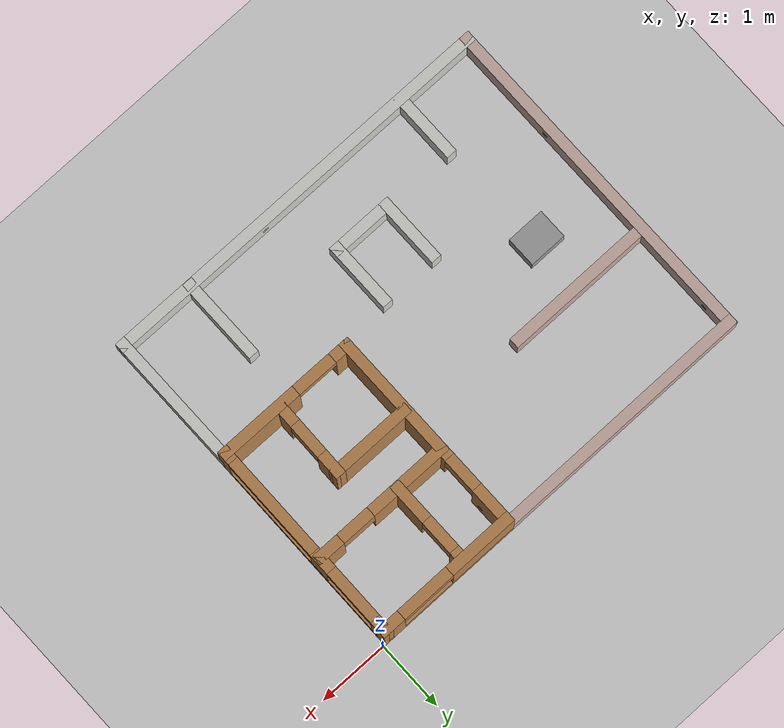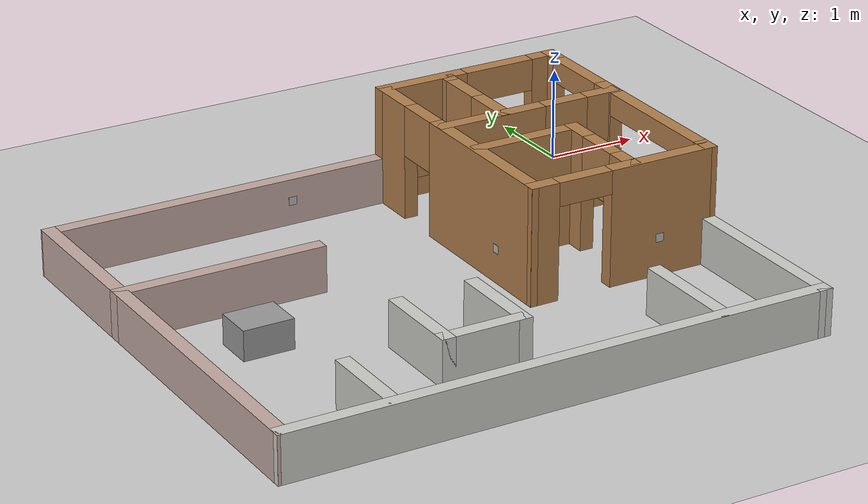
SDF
<sdf version="1.6">
 <world name="default">
  <light name="sun" type="directional">
   <pose>0 0 10 0 -0 0</pose>
   <diffuse>0.8 0.8 0.8 1</diffuse>
   <specular>0.2 0.2 0.2 1</specular>
   <attenuation>
    <range>1000</range>
    <constant>0.9</constant>
    <linear>0.01</linear>
    <quadratic>0.001</quadratic>
   </attenuation>
   <direction>-0.5 0.1 -0.9</direction>
  </light>
  <model name="ground_plane">
   <static>1</static>
   <link name="link">
    <collision name="collision">
     <geometry><plane><normal>0 0 1</normal><size>100 100</size></plane></geometry>
     <surface><friction><ode><mu>100</mu><mu2>50</mu2></ode></friction></surface>
    </collision>
    <visual name="visual">
     <cast_shadows>0</cast_shadows>
     <geometry><plane><normal>0 0 1</normal><size>100 100</size></plane></geometry>
     <material>
      <script><uri>file://media/materials/scripts/gazebo.material</uri><name>Gazebo/Grey</name></script>
     </material>
    </visual>
   </link>
  </model>
  <gravity>0 0 -9.8</gravity>
  <magnetic_field>6e-06 2.3e-05 -4.2e-05</magnetic_field>
  <atmosphere type="adiabatic"/>
  <physics name="default_physics" default="0" type="ode">
   <max_step_size>0.001</max_step_size>
   <real_time_factor>1</real_time_factor>
   <real_time_update_rate>1000</real_time_update_rate>
   <ode><solver><friction_model>cone_model</friction_model></solver></ode>
  </physics>
  <scene><ambient>0.4 0.4 0.4 1</ambient><background>0.7 0.7 0.7 1</background><shadows>1</shadows></scene>
  <spherical_coordinates>
   <surface_model>EARTH_WGS84</surface_model>
   <latitude_deg>0</latitude_deg>
   <longitude_deg>0</longitude_deg>
   <elevation>0</elevation>
   <heading_deg>0</heading_deg>
  </spherical_coordinates>
  <model name="Muzeum">
   <pose>-3 -2.5 0 0 -0 0</pose>
   <link name="Wall_0">
    <collision name="Wall_0_Collision">
     <geometry><box><size>5.9351 0.15 0.5</size></box></geometry>
     <pose>0 0 0.25 0 -0 0</pose>
    </collision>
    <visual name="Wall_0_Visual">
     <pose>0 0 0.25 0 -0 0</pose>
     <geometry><box><size>5.9351 0.15 0.5</size></box></geometry>
     <material>
      <script><uri>file://media/materials/scripts/gazebo.material</uri><name>Gazebo/CeilingTiled</name></script>
      <ambient>0.760784 0.662745 0.627451 1</ambient>
     </material>
    </visual>
    <pose>-0.007007 -2.42791 0 0 0 -0.003148</pose>
   </link>
   <link name="Wall_10">
    <collision name="Wall_10_Collision">
     <geometry><box><size>2.25 0.15 0.5</size></box></geometry>
     <pose>0 0 0.25 0 -0 0</pose>
    </collision>
    <visual name="Wall_10_Visual">
     <pose>0 0 0.25 0 -0 0</pose>
     <geometry><box><size>2.25 0.15 0.5</size></box></geometry>
     <material>
      <script><uri>file://media/materials/scripts/gazebo.material</uri><name>Gazebo/Grey</name></script>
      <ambient>0.760784 0.662745 0.627451 1</ambient>
     </material>
    </visual>
    <pose>-1.84954 0.824193 0 0 -0 0</pose>
   </link>
   <link name="Wall_12">
    <collision name="Wall_12_Collision">
     <geometry><box><size>1 0.15 0.5</size></box></geometry>
     <pose>0 0 0.25 0 -0 0</pose>
    </collision>
    <visual name="Wall_12_Visual">
     <pose>0 0 0.25 0 -0 0</pose>
     <geometry><box><size>1 0.15 0.5</size></box></geometry>
     <material>
      <script><uri>file://media/materials/scripts/gazebo.material</uri><name>Gazebo/CeilingTiled</name></script>
      <ambient>0.760784 0.662745 0.627451 1</ambient>
     </material>
    </visual>
    <pose>-0.729544 -1.11281 0 0 0 -1.5708</pose>
   </link>
   <link name="Wall_13">
    <collision name="Wall_13_Collision">
     <geometry><box><size>0.979959 0.15 0.5</size></box></geometry>
     <pose>0 0 0.25 0 -0 0</pose>
    </collision>
    <visual name="Wall_13_Visual">
     <pose>0 0 0.25 0 -0 0</pose>
     <geometry><box><size>0.979959 0.15 0.5</size></box></geometry>
     <material>
      <script><uri>file://media/materials/scripts/gazebo.material</uri><name>Gazebo/CeilingTiled</name></script>
      <ambient>0.760784 0.662745 0.627451 1</ambient>
     </material>
    </visual>
    <pose>-0.314544 -1.53781 0 0 -0 0</pose>
   </link>
   <link name="Wall_14">
    <collision name="Wall_14_Collision">
     <geometry><box><size>1.00821 0.15 0.5</size></box></geometry>
     <pose>0 0 0.25 0 -0 0</pose>
    </collision>
    <visual name="Wall_14_Visual">
     <pose>0 0 0.25 0 -0 0</pose>
     <geometry><box><size>1.00821 0.15 0.5</size></box></geometry>
     <material>
      <script><uri>file://media/materials/scripts/gazebo.material</uri><name>Gazebo/CeilingTiled</name></script>
      <ambient>0.760784 0.662745 0.627451 1</ambient>
     </material>
    </visual>
    <pose>0.100456 -1.10881 0 0 -0 1.5708</pose>
   </link>
   <link name="Wall_16">
    <collision name="Wall_16_Collision">
     <geometry><box><size>1.25027 0.15 1.25</size></box></geometry>
     <pose>0 0 0.625 0 -0 0</pose>
    </collision>
    <visual name="Wall_16_Visual">
     <pose>0 0 0.625 0 -0 0</pose>
     <geometry><box><size>1.25027 0.15 1.25</size></box></geometry>
     <material>
      <script><uri>file://media/materials/scripts/gazebo.material</uri><name>Gazebo/Wood</name></script>
      <ambient>1 1 1 1</ambient>
     </material>
    </visual>
    <pose>1.46896 0.594193 0 0 -0 0</pose>
   </link>
   <link name="Wall_17">
    <pose>2.01146 0.070193 0 0 0 -1.58606</pose>
    <visual name="Wall_17_Visual_0">
     <pose>-0.420759 0 0.625 0 -0 0</pose>
     <geometry><box><size>0.357124 0.15 1.25</size></box></geometry>
     <material>
      <script><uri>file://media/materials/scripts/gazebo.material</uri><name>Gazebo/Wood</name></script>
      <ambient>1 1 1 1</ambient>
     </material>
    </visual>
    <collision name="Wall_17_Collision_0">
     <geometry><box><size>0.357124 0.15 1.25</size></box></geometry>
     <pose>-0.420759 0 0.625 0 -0 0</pose>
    </collision>
    <visual name="Wall_17_Visual_1">
     <pose>0.428562 0 0.625 0 -0 0</pose>
     <geometry><box><size>0.341518 0.15 1.25</size></box></geometry>
     <material>
      <script><uri>file://media/materials/scripts/gazebo.material</uri><name>Gazebo/Wood</name></script>
      <ambient>1 1 1 1</ambient>
     </material>
    </visual>
    <collision name="Wall_17_Collision_1">
     <geometry><box><size>0.341518 0.15 1.25</size></box></geometry>
     <pose>0.428562 0 0.625 0 -0 0</pose>
    </collision>
    <visual name="Wall_17_Visual_2">
     <pose>0.007803 0 0.975 0 -0 0</pose>
     <geometry><box><size>0.5 0.15 0.55</size></box></geometry>
     <material>
      <script><uri>file://media/materials/scripts/gazebo.material</uri><name>Gazebo/Wood</name></script>
      <ambient>1 1 1 1</ambient>
     </material>
    </visual>
    <collision name="Wall_17_Collision_2">
     <geometry><box><size>0.5 0.15 0.55</size></box></geometry>
     <pose>0.007803 0 0.975 0 -0 0</pose>
    </collision>
   </link>
   <link name="Wall_19">
    <pose>1.88387 1.24696 0 0 0 -0.003258</pose>
    <visual name="Wall_19_Visual_0">
     <pose>-0.448853 0 0.625 0 -0 0</pose>
     <geometry><box><size>1.23514 0.15 1.25</size></box></geometry>
     <material>
      <script><uri>file://media/materials/scripts/gazebo.material</uri><name>Gazebo/Wood</name></script>
      <ambient>1 1 1 1</ambient>
     </material>
    </visual>
    <collision name="Wall_19_Collision_0">
     <geometry><box><size>1.23514 0.15 1.25</size></box></geometry>
     <pose>-0.448853 0 0.625 0 -0 0</pose>
    </collision>
    <visual name="Wall_19_Visual_1">
     <pose>0.867571 0 0.625 0 -0 0</pose>
     <geometry><box><size>0.397706 0.15 1.25</size></box></geometry>
     <material>
      <script><uri>file://media/materials/scripts/gazebo.material</uri><name>Gazebo/Wood</name></script>
      <ambient>1 1 1 1</ambient>
     </material>
    </visual>
    <collision name="Wall_19_Collision_1">
     <geometry><box><size>0.397706 0.15 1.25</size></box></geometry>
     <pose>0.867571 0 0.625 0 -0 0</pose>
    </collision>
    <visual name="Wall_19_Visual_2">
     <pose>0.418718 0 0.975 0 -0 0</pose>
     <geometry><box><size>0.5 0.15 0.55</size></box></geometry>
     <material>
      <script><uri>file://media/materials/scripts/gazebo.material</uri><name>Gazebo/Wood</name></script>
      <ambient>1 1 1 1</ambient>
     </material>
    </visual>
    <collision name="Wall_19_Collision_2">
     <geometry><box><size>0.5 0.15 0.55</size></box></geometry>
     <pose>0.418718 0 0.975 0 -0 0</pose>
    </collision>
   </link>
   <link name="Wall_21">
    <pose>1.60746 1.80819 0 0 -0 1.5708</pose>
    <visual name="Wall_21_Visual_0">
     <pose>-0.328111 0 0.625 0 -0 0</pose>
     <geometry><box><size>0.593779 0.15 1.25</size></box></geometry>
     <material>
      <script><uri>file://media/materials/scripts/gazebo.material</uri><name>Gazebo/Wood</name></script>
      <ambient>1 1 1 1</ambient>
     </material>
    </visual>
    <collision name="Wall_21_Collision_0">
     <geometry><box><size>0.593779 0.15 1.25</size></box></geometry>
     <pose>-0.328111 0 0.625 0 -0 0</pose>
    </collision>
    <visual name="Wall_21_Visual_1">
     <pose>0.546889 0 0.625 0 -0 0</pose>
     <geometry><box><size>0.156221 0.15 1.25</size></box></geometry>
     <material>
      <script><uri>file://media/materials/scripts/gazebo.material</uri><name>Gazebo/Wood</name></script>
      <ambient>1 1 1 1</ambient>
     </material>
    </visual>
    <collision name="Wall_21_Collision_1">
     <geometry><box><size>0.156221 0.15 1.25</size></box></geometry>
     <pose>0.546889 0 0.625 0 -0 0</pose>
    </collision>
    <visual name="Wall_21_Visual_2">
     <pose>0.218779 0 0.975 0 -0 0</pose>
     <geometry><box><size>0.5 0.15 0.55</size></box></geometry>
     <material>
      <script><uri>file://media/materials/scripts/gazebo.material</uri><name>Gazebo/Wood</name></script>
      <ambient>1 1 1 1</ambient>
     </material>
    </visual>
    <collision name="Wall_21_Collision_2">
     <geometry><box><size>0.5 0.15 0.55</size></box></geometry>
     <pose>0.218779 0 0.975 0 -0 0</pose>
    </collision>
   </link>
   <link name="Wall_23">
    <collision name="Wall_23_Collision">
     <geometry><box><size>1.25 0.15 0.5</size></box></geometry>
     <pose>0 0 0.25 0 -0 0</pose>
    </collision>
    <visual name="Wall_23_Visual">
     <pose>0 0 0.25 0 -0 0</pose>
     <geometry><box><size>1.25 0.15 0.5</size></box></geometry>
     <material>
      <script><uri>file://media/materials/scripts/gazebo.material</uri><name>Gazebo/CeilingTiled</name></script>
      <ambient>0.760784 0.662745 0.627451 1</ambient>
     </material>
    </visual>
    <pose>1.76746 -1.87681 0 0 -0 1.5708</pose>
   </link>
   <link name="Wall_26">
    <collision name="Wall_26_Collision">
     <geometry><box><size>1 0.15 0.5</size></box></geometry>
     <pose>0 0 0.25 0 -0 0</pose>
    </collision>
    <visual name="Wall_26_Visual">
     <pose>0 0 0.25 0 -0 0</pose>
     <geometry><box><size>1 0.15 0.5</size></box></geometry>
     <material>
      <script><uri>file://media/materials/scripts/gazebo.material</uri><name>Gazebo/CeilingTiled</name></script>
      <ambient>0.760784 0.662745 0.627451 1</ambient>
     </material>
    </visual>
    <pose>-1.76654 -1.96681 0 0 -0 1.5708</pose>
   </link>
   <link name="Wall_28">
    <pose>2.89167 0.974494 0 0 -0 1.56552</pose>
    <visual name="Wall_28_Visual_0">
     <pose>-1.43397 0 0.625 0 -0 0</pose>
     <geometry><box><size>0.206833 0.15 1.25</size></box></geometry>
     <material>
      <script><uri>file://media/materials/scripts/gazebo.material</uri><name>Gazebo/Wood</name></script>
      <ambient>1 1 1 1</ambient>
     </material>
    </visual>
    <collision name="Wall_28_Collision_0">
     <geometry><box><size>0.206833 0.15 1.25</size></box></geometry>
     <pose>-1.43397 0 0.625 0 -0 0</pose>
    </collision>
    <visual name="Wall_28_Visual_1">
     <pose>0.103416 0 0.1 0 -0 0</pose>
     <geometry><box><size>2.86795 0.15 0.2</size></box></geometry>
     <material>
      <script><uri>file://media/materials/scripts/gazebo.material</uri><name>Gazebo/Wood</name></script>
      <ambient>1 1 1 1</ambient>
     </material>
    </visual>
    <collision name="Wall_28_Collision_1">
     <geometry><box><size>2.86795 0.15 0.2</size></box></geometry>
     <pose>0.103416 0 0.1 0 -0 0</pose>
    </collision>
    <visual name="Wall_28_Visual_2">
     <pose>0.325307 0 0.725 0 -0 0</pose>
     <geometry><box><size>0.311727 0.15 1.05</size></box></geometry>
     <material>
      <script><uri>file://media/materials/scripts/gazebo.material</uri><name>Gazebo/Wood</name></script>
      <ambient>1 1 1 1</ambient>
     </material>
    </visual>
    <collision name="Wall_28_Collision_2">
     <geometry><box><size>0.311727 0.15 1.05</size></box></geometry>
     <pose>0.325307 0 0.725 0 -0 0</pose>
    </collision>
    <visual name="Wall_28_Visual_3">
     <pose>1.40928 0 0.725 0 -0 0</pose>
     <geometry><box><size>0.256218 0.15 1.05</size></box></geometry>
     <material>
      <script><uri>file://media/materials/scripts/gazebo.material</uri><name>Gazebo/Wood</name></script>
      <ambient>1 1 1 1</ambient>
     </material>
    </visual>
    <collision name="Wall_28_Collision_3">
     <geometry><box><size>0.256218 0.15 1.05</size></box></geometry>
     <pose>1.40928 0 0.725 0 -0 0</pose>
    </collision>
    <visual name="Wall_28_Visual_4">
     <pose>-0.580556 0 1.125 0 -0 0</pose>
     <geometry><box><size>1.5 0.15 0.25</size></box></geometry>
     <material>
      <script><uri>file://media/materials/scripts/gazebo.material</uri><name>Gazebo/Wood</name></script>
      <ambient>1 1 1 1</ambient>
     </material>
    </visual>
    <collision name="Wall_28_Collision_4">
     <geometry><box><size>1.5 0.15 0.25</size></box></geometry>
     <pose>-0.580556 0 1.125 0 -0 0</pose>
    </collision>
    <visual name="Wall_28_Visual_5">
     <pose>0.881171 0 1.125 0 -0 0</pose>
     <geometry><box><size>0.8 0.15 0.25</size></box></geometry>
     <material>
      <script><uri>file://media/materials/scripts/gazebo.material</uri><name>Gazebo/Wood</name></script>
      <ambient>1 1 1 1</ambient>
     </material>
    </visual>
    <collision name="Wall_28_Collision_5">
     <geometry><box><size>0.8 0.15 0.25</size></box></geometry>
     <pose>0.881171 0 1.125 0 -0 0</pose>
    </collision>
   </link>
   <link name="Wall_3">
    <collision name="Wall_3_Collision">
     <geometry><box><size>4.99773 0.15 0.5</size></box></geometry>
     <pose>0 0 0.25 0 -0 0</pose>
    </collision>
    <visual name="Wall_3_Visual">
     <pose>0 0 0.25 0 -0 0</pose>
     <geometry><box><size>4.99773 0.15 0.5</size></box></geometry>
     <material>
      <script><uri>file://media/materials/scripts/gazebo.material</uri><name>Gazebo/Grey</name></script>
      <ambient>0.760784 0.662745 0.627451 1</ambient>
     </material>
    </visual>
    <pose>-2.89954 0.005193 0 0 0 -1.5708</pose>
   </link>
   <link name="Wall_33">
    <pose>1.89342 2.43553 0 0 0 -3.14027</pose>
    <visual name="Wall_33_Visual_0">
     <pose>-0.909474 0 0.625 0 -0 0</pose>
     <geometry><box><size>0.343502 0.15 1.25</size></box></geometry>
     <material>
      <script><uri>file://media/materials/scripts/gazebo.material</uri><name>Gazebo/Wood</name></script>
      <ambient>1 1 1 1</ambient>
     </material>
    </visual>
    <collision name="Wall_33_Collision_0">
     <geometry><box><size>0.343502 0.15 1.25</size></box></geometry>
     <pose>-0.909474 0 0.625 0 -0 0</pose>
    </collision>
    <visual name="Wall_33_Visual_1">
     <pose>0.171751 0 0.1 0 -0 0</pose>
     <geometry><box><size>1.81895 0.15 0.2</size></box></geometry>
     <material>
      <script><uri>file://media/materials/scripts/gazebo.material</uri><name>Gazebo/Wood</name></script>
      <ambient>1 1 1 1</ambient>
     </material>
    </visual>
    <collision name="Wall_33_Collision_1">
     <geometry><box><size>1.81895 0.15 0.2</size></box></geometry>
     <pose>0.171751 0 0.1 0 -0 0</pose>
    </collision>
    <visual name="Wall_33_Visual_2">
     <pose>0.571751 0 0.725 0 -0 0</pose>
     <geometry><box><size>1.01895 0.15 1.05</size></box></geometry>
     <material>
      <script><uri>file://media/materials/scripts/gazebo.material</uri><name>Gazebo/Wood</name></script>
      <ambient>1 1 1 1</ambient>
     </material>
    </visual>
    <collision name="Wall_33_Collision_2">
     <geometry><box><size>1.01895 0.15 1.05</size></box></geometry>
     <pose>0.571751 0 0.725 0 -0 0</pose>
    </collision>
    <visual name="Wall_33_Visual_3">
     <pose>-0.337723 0 1.075 0 -0 0</pose>
     <geometry><box><size>0.8 0.15 0.35</size></box></geometry>
     <material>
      <script><uri>file://media/materials/scripts/gazebo.material</uri><name>Gazebo/Wood</name></script>
      <ambient>1 1 1 1</ambient>
     </material>
    </visual>
    <collision name="Wall_33_Collision_3">
     <geometry><box><size>0.8 0.15 0.35</size></box></geometry>
     <pose>-0.337723 0 1.075 0 -0 0</pose>
    </collision>
   </link>
   <link name="Wall_35">
    <collision name="Wall_35_Collision">
     <geometry><box><size>2.09915 0.15 0.5</size></box></geometry>
     <pose>0 0 0.25 0 -0 0</pose>
    </collision>
    <visual name="Wall_35_Visual">
     <pose>0 0 0.25 0 -0 0</pose>
     <geometry><box><size>2.09915 0.15 0.5</size></box></geometry>
     <material>
      <script><uri>file://media/materials/scripts/gazebo.material</uri><name>Gazebo/CeilingTiled</name></script>
      <ambient>0.760784 0.662745 0.627451 1</ambient>
     </material>
    </visual>
    <pose>2.88474 -1.46245 0 0 -0 1.57161</pose>
   </link>
   <link name="Wall_37">
    <collision name="Wall_37_Collision">
     <geometry><box><size>3.93685 0.15 0.5</size></box></geometry>
     <pose>0 0 0.25 0 -0 0</pose>
    </collision>
    <visual name="Wall_37_Visual">
     <pose>0 0 0.25 0 -0 0</pose>
     <geometry><box><size>3.93685 0.15 0.5</size></box></geometry>
     <material>
      <script><uri>file://media/materials/scripts/gazebo.material</uri><name>Gazebo/Grey</name></script>
      <ambient>0.760784 0.662745 0.627451 1</ambient>
     </material>
    </visual>
    <pose>-1.00604 2.43169 0 0 -0 0.00132</pose>
   </link>
   <link name="Wall_7">
    <pose>0.887455 0.947193 0 0 0 -1.5708</pose>
    <visual name="Wall_7_Visual_0">
     <pose>-1.2252 0 0.625 0 -0 0</pose>
     <geometry><box><size>0.549592 0.15 1.25</size></box></geometry>
     <material>
      <script><uri>file://media/materials/scripts/gazebo.material</uri><name>Gazebo/Wood</name></script>
      <ambient>1 1 1 1</ambient>
     </material>
    </visual>
    <collision name="Wall_7_Collision_0">
     <geometry><box><size>0.549592 0.15 1.25</size></box></geometry>
     <pose>-1.2252 0 0.625 0 -0 0</pose>
    </collision>
    <visual name="Wall_7_Visual_1">
     <pose>0.524796 0 0.625 0 -0 0</pose>
     <geometry><box><size>1.95041 0.15 1.25</size></box></geometry>
     <material>
      <script><uri>file://media/materials/scripts/gazebo.material</uri><name>Gazebo/Wood</name></script>
      <ambient>1 1 1 1</ambient>
     </material>
    </visual>
    <collision name="Wall_7_Collision_1">
     <geometry><box><size>1.95041 0.15 1.25</size></box></geometry>
     <pose>0.524796 0 0.625 0 -0 0</pose>
    </collision>
    <visual name="Wall_7_Visual_2">
     <pose>-0.700408 0 0.975 0 -0 0</pose>
     <geometry><box><size>0.5 0.15 0.55</size></box></geometry>
     <material>
      <script><uri>file://media/materials/scripts/gazebo.material</uri><name>Gazebo/Wood</name></script>
      <ambient>1 1 1 1</ambient>
     </material>
    </visual>
    <collision name="Wall_7_Collision_2">
     <geometry><box><size>0.5 0.15 0.55</size></box></geometry>
     <pose>-0.700408 0 0.975 0 -0 0</pose>
    </collision>
   </link>
   <link name="Wall_8">
    <pose>1.8857 -0.482841 0 0 0 -0.005043</pose>
    <visual name="Wall_8_Visual_0">
     <pose>-0.91578 0 0.625 0 -0 0</pose>
     <geometry><box><size>0.314933 0.15 1.25</size></box></geometry>
     <material>
      <script><uri>file://media/materials/scripts/gazebo.material</uri><name>Gazebo/Wood</name></script>
      <ambient>1 1 1 1</ambient>
     </material>
    </visual>
    <collision name="Wall_8_Collision_0">
     <geometry><box><size>0.314933 0.15 1.25</size></box></geometry>
     <pose>-0.91578 0 0.625 0 -0 0</pose>
    </collision>
    <visual name="Wall_8_Visual_1">
     <pose>0.457466 0 0.625 0 -0 0</pose>
     <geometry><box><size>1.23156 0.15 1.25</size></box></geometry>
     <material>
      <script><uri>file://media/materials/scripts/gazebo.material</uri><name>Gazebo/Wood</name></script>
      <ambient>1 1 1 1</ambient>
     </material>
    </visual>
    <collision name="Wall_8_Collision_1">
     <geometry><box><size>1.23156 0.15 1.25</size></box></geometry>
     <pose>0.457466 0 0.625 0 -0 0</pose>
    </collision>
    <visual name="Wall_8_Visual_2">
     <pose>-0.458314 0 1.125 0 -0 0</pose>
     <geometry><box><size>0.6 0.15 0.25</size></box></geometry>
     <material>
      <script><uri>file://media/materials/scripts/gazebo.material</uri><name>Gazebo/Wood</name></script>
      <ambient>1 1 1 1</ambient>
     </material>
    </visual>
    <collision name="Wall_8_Collision_2">
     <geometry><box><size>0.6 0.15 0.25</size></box></geometry>
     <pose>-0.458314 0 1.125 0 -0 0</pose>
    </collision>
   </link>
   <static>1</static>
  </model>
  <model name="aruco_mark_7">
   <static>1</static>
   <link name="link">
    <visual name="visual">
     <geometry>
      <mesh><uri>model://aruco_mark_7/meshes/aruco_mark_7.dae</uri><scale>0.1778 0.1778 0.1778</scale></mesh>
     </geometry>
    </visual>
   </link>
   <pose>-2.1926 -2.40816 0.32775 0 -0 0</pose>
  </model>
  <model name="aruco_mark_1">
   <static>1</static>
   <link name="link">
    <visual name="visual">
     <geometry>
      <mesh><uri>model://aruco_mark_1/meshes/aruco_mark_1.dae</uri><scale>0.1778 0.1778 0.1778</scale></mesh>
     </geometry>
    </visual>
   </link>
   <pose>-0.698953 -3.06235 0.368041 0 -0 1.5708</pose>
  </model>
  <model name="aruco_mark_2">
   <static>1</static>
   <link name="link">
    <visual name="visual">
     <geometry>
      <mesh><uri>model://aruco_mark_2/meshes/aruco_mark_2.dae</uri><scale>0.1778 0.1778 0.1778</scale></mesh>
     </geometry>
    </visual>
   </link>
   <pose>-1.61932 -1.98233 0.368041 0 0 -1.5708</pose>
  </model>
  <model name="aruco_mark_3">
   <static>1</static>
   <link name="link">
    <visual name="visual">
     <geometry>
      <mesh><uri>model://aruco_mark_3/meshes/aruco_mark_3.dae</uri><scale>0.1778 0.1778 0.1778</scale></mesh>
     </geometry>
    </visual>
   </link>
   <pose>-0.638328 -1.33011 0.755768 0 0 -1.5708</pose>
  </model>
  <model name="aruco_mark_4">
   <static>1</static>
   <link name="link">
    <visual name="visual">
     <geometry>
      <mesh><uri>model://aruco_mark_4/meshes/aruco_mark_4.dae</uri><scale>0.1778 0.1778 0.1778</scale></mesh>
     </geometry>
    </visual>
   </link>
   <pose>-2.03659 -0.441157 0.28954 0 -0 0</pose>
  </model>
  <model name="aruco_mark_6">
   <static>1</static>
   <link name="link">
    <visual name="visual">
     <geometry>
      <mesh><uri>model://aruco_mark_6/meshes/aruco_mark_6.dae</uri><scale>0.1778 0.1778 0.1778</scale></mesh>
     </geometry>
    </visual>
   </link>
   <pose>-5.82007 -0.43574 0.221918 0 -0 0</pose>
  </model>
  <model name="aruco_mark_0">
   <static>1</static>
   <link name="link">
    <visual name="visual">
     <geometry>
      <mesh><uri>model://aruco_mark_0/meshes/aruco_mark_0.dae</uri><scale>0.1778 0.1778 0.1778</scale></mesh>
     </geometry>
    </visual>
   </link>
   <pose>-5.82378 -3.39153 0.221918 0 -0 0</pose>
  </model>
  <model name="aruco_mark_5">
   <static>1</static>
   <link name="link">
    <visual name="visual">
     <geometry>
      <mesh><uri>model://aruco_mark_5/meshes/aruco_mark_5.dae</uri><scale>0.1778 0.1778 0.1778</scale></mesh>
     </geometry>
    </visual>
   </link>
   <pose>-2.41578 -4.85092 0.221918 0 -0 1.5708</pose>
  </model>
  <model name="aruco_mark_8">
   <static>1</static>
   <link name="link">
    <visual name="visual">
     <geometry>
      <mesh><uri>model://aruco_mark_8/meshes/aruco_mark_8.dae</uri><scale>0.1778 0.1778 0.1778</scale></mesh>
     </geometry>
    </visual>
   </link>
   <pose>-3.25 -0.15 0.22 0 0 -1.5708</pose>
  </model>
  <model name="unit_box">
   <pose>-4.85752 -2.48517 0.161264 -1.6e-05 2e-06 1e-06</pose>
   <link name="link">
    <inertial>
     <mass>1</mass>
     <inertia>
      <ixx>0.166667</ixx>
      <ixy>0</ixy>
      <ixz>0</ixz>
      <iyy>0.166667</iyy>
      <iyz>0</iyz>
      <izz>0.166667</izz>
     </inertia>
    </inertial>
    <collision name="collision"><geometry><box><size>0.542327 0.429481 0.32254</size></box></geometry></collision>
    <visual name="visual">
     <geometry><box><size>0.542327 0.429481 0.32254</size></box></geometry>
     <material>
      <script><name>Gazebo/Grey</name><uri>file://media/materials/scripts/gazebo.material</uri></script>
     </material>
    </visual>
   </link>
  </model>
 </world>
</sdf>
